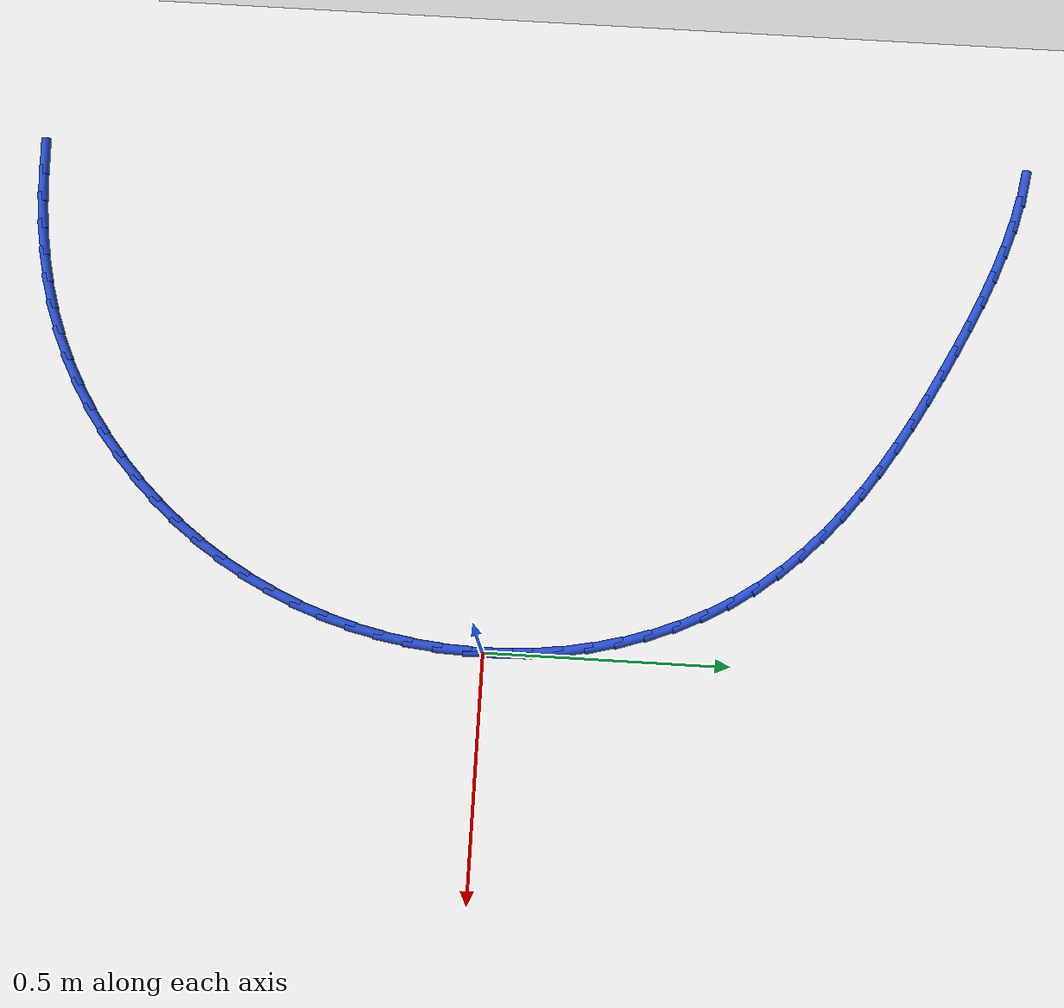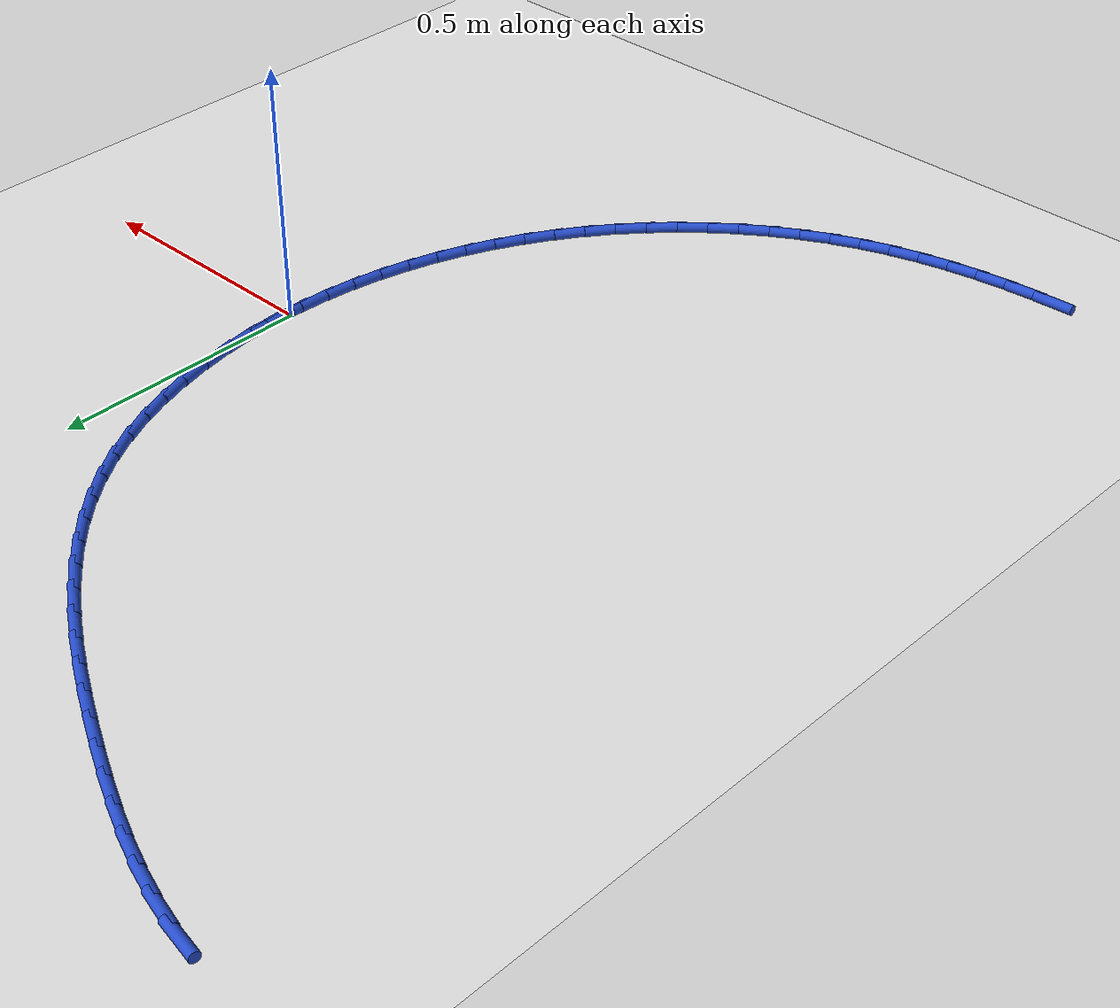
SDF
<sdf version="1.6">
 <world name="default">
  <model name="ground_plane">
   <static>1</static>
   <link name="link">
    <collision name="collision">
     <geometry><plane><normal>0 0 1</normal><size>100 100</size></plane></geometry>
     <surface><friction><ode><mu>100</mu><mu2>50</mu2></ode></friction></surface>
    </collision>
    <visual name="visual">
     <cast_shadows>0</cast_shadows>
     <geometry><plane><normal>0 0 1</normal><size>100 100</size></plane></geometry>
     <material>
      <script><uri>file://media/materials/scripts/gazebo.material</uri><name>Gazebo/WhiteGlow</name></script>
     </material>
    </visual>
   </link>
  </model>
  <model name="line">
   <link name="link_0">
    <pose>2.42861286636753e-17 1.1102230246251565e-16 0.01 0 1.57 -1.5458586868431412</pose>
    <collision name="collision">
     <geometry><cylinder><radius>0.01</radius><length>0.08</length></cylinder></geometry>
    </collision>
    <visual name="visual">
     <material>
      <script><name>Gazebo/Blue</name><uri>file://media/materials/scripts/gazebo.material</uri></script>
     </material>
     <geometry><cylinder><radius>0.01</radius><length>0.08</length></cylinder></geometry>
    </visual>
   </link>
   <link name="link_1">
    <pose>-0.0015207164406673694 0.06096812662203337 0.01 0 1.57 -1.4866603653751793</pose>
    <collision name="collision">
     <geometry><cylinder><radius>0.01</radius><length>0.08</length></cylinder></geometry>
    </collision>
    <visual name="visual">
     <material>
      <script><name>Gazebo/Blue</name><uri>file://media/materials/scripts/gazebo.material</uri></script>
     </material>
     <geometry><cylinder><radius>0.01</radius><length>0.08</length></cylinder></geometry>
    </visual>
   </link>
   <link name="link_2">
    <pose>-0.0066566192581545315 0.12186691744838041 0.01 0 1.57 -1.4271878224867465</pose>
    <collision name="collision">
     <geometry><cylinder><radius>0.01</radius><length>0.08</length></cylinder></geometry>
    </collision>
    <visual name="visual">
     <material>
      <script><name>Gazebo/Blue</name><uri>file://media/materials/scripts/gazebo.material</uri></script>
     </material>
     <geometry><cylinder><radius>0.01</radius><length>0.08</length></cylinder></geometry>
    </visual>
   </link>
   <link name="link_3">
    <pose>-0.015404263170040514 0.18236072815579585 0.01 0 1.57 -1.3668872946240866</pose>
    <collision name="collision">
     <geometry><cylinder><radius>0.01</radius><length>0.08</length></cylinder></geometry>
    </collision>
    <visual name="visual">
     <material>
      <script><name>Gazebo/Blue</name><uri>file://media/materials/scripts/gazebo.material</uri></script>
     </material>
     <geometry><cylinder><radius>0.01</radius><length>0.08</length></cylinder></geometry>
    </visual>
   </link>
   <link name="link_4">
    <pose>-0.027760202893904365 0.24211391442103428 0.01 0 1.57 -1.3052107145031218</pose>
    <collision name="collision">
     <geometry><cylinder><radius>0.01</radius><length>0.08</length></cylinder></geometry>
    </collision>
    <visual name="visual">
     <material>
      <script><name>Gazebo/Blue</name><uri>file://media/materials/scripts/gazebo.material</uri></script>
     </material>
     <geometry><cylinder><radius>0.01</radius><length>0.08</length></cylinder></geometry>
    </visual>
   </link>
   <link name="link_5">
    <pose>-0.043720993147325186 0.3007908319208505 0.01 0 1.57 -1.2416169645221773</pose>
    <collision name="collision">
     <geometry><cylinder><radius>0.01</radius><length>0.08</length></cylinder></geometry>
    </collision>
    <visual name="visual">
     <material>
      <script><name>Gazebo/Blue</name><uri>file://media/materials/scripts/gazebo.material</uri></script>
     </material>
     <geometry><cylinder><radius>0.01</radius><length>0.08</length></cylinder></geometry>
    </visual>
   </link>
   <link name="link_6">
    <pose>-0.06328318864788199 0.3580558363319988 0.01 0 1.57 -1.1755772963188136</pose>
    <collision name="collision">
     <geometry><cylinder><radius>0.01</radius><length>0.08</length></cylinder></geometry>
    </collision>
    <visual name="visual">
     <material>
      <script><name>Gazebo/Blue</name><uri>file://media/materials/scripts/gazebo.material</uri></script>
     </material>
     <geometry><cylinder><radius>0.01</radius><length>0.08</length></cylinder></geometry>
    </visual>
   </link>
   <link name="link_7">
    <pose>-0.08644334411315385 0.4135732833312339 0.01 0 1.57 -1.1065867267233076</pose>
    <collision name="collision">
     <geometry><cylinder><radius>0.01</radius><length>0.08</length></cylinder></geometry>
    </collision>
    <visual name="visual">
     <material>
      <script><name>Gazebo/Blue</name><uri>file://media/materials/scripts/gazebo.material</uri></script>
     </material>
     <geometry><cylinder><radius>0.01</radius><length>0.08</length></cylinder></geometry>
    </visual>
   </link>
   <link name="link_8">
    <pose>-0.11319801426071982 0.4670075285953104 0.01 0 1.57 -1.0341833547181802</pose>
    <collision name="collision">
     <geometry><cylinder><radius>0.01</radius><length>0.08</length></cylinder></geometry>
    </collision>
    <visual name="visual">
     <material>
      <script><name>Gazebo/Blue</name><uri>file://media/materials/scripts/gazebo.material</uri></script>
     </material>
     <geometry><cylinder><radius>0.01</radius><length>0.08</length></cylinder></geometry>
    </visual>
   </link>
   <link name="link_9">
    <pose>-0.143543753808159 0.5180229278009831 0.01 0 1.57 -0.9582198442773596</pose>
    <collision name="collision">
     <geometry><cylinder><radius>0.01</radius><length>0.08</length></cylinder></geometry>
    </collision>
    <visual name="visual">
     <material>
      <script><name>Gazebo/Blue</name><uri>file://media/materials/scripts/gazebo.material</uri></script>
     </material>
     <geometry><cylinder><radius>0.01</radius><length>0.08</length></cylinder></geometry>
    </visual>
   </link>
   <link name="link_10">
    <pose>-0.1774692086949477 0.5662974650293844 0.01 0 1.57 -0.8832938244585523</pose>
    <collision name="collision">
     <geometry><cylinder><radius>0.01</radius><length>0.08</length></cylinder></geometry>
    </collision>
    <visual name="visual">
     <material>
      <script><name>Gazebo/Blue</name><uri>file://media/materials/scripts/gazebo.material</uri></script>
     </material>
     <geometry><cylinder><radius>0.01</radius><length>0.08</length></cylinder></geometry>
    </visual>
   </link>
   <link name="link_11">
    <pose>-0.2148104602355279 0.611772023683986 0.01 0 1.57 -0.8141716887558273</pose>
    <collision name="collision">
     <geometry><cylinder><radius>0.01</radius><length>0.08</length></cylinder></geometry>
    </collision>
    <visual name="visual">
     <material>
      <script><name>Gazebo/Blue</name><uri>file://media/materials/scripts/gazebo.material</uri></script>
     </material>
     <geometry><cylinder><radius>0.01</radius><length>0.08</length></cylinder></geometry>
    </visual>
   </link>
   <link name="link_12">
    <pose>-0.2552657368704845 0.654625035204782 0.01 0 1.57 -0.7514234159928848</pose>
    <collision name="collision">
     <geometry><cylinder><radius>0.01</radius><length>0.08</length></cylinder></geometry>
    </collision>
    <visual name="visual">
     <material>
      <script><name>Gazebo/Blue</name><uri>file://media/materials/scripts/gazebo.material</uri></script>
     </material>
     <geometry><cylinder><radius>0.01</radius><length>0.08</length></cylinder></geometry>
    </visual>
   </link>
   <link name="link_13">
    <pose>-0.2985283100997654 0.6950434728305875 0.01 0 1.57 -0.6951879975769143</pose>
    <collision name="collision">
     <geometry><cylinder><radius>0.01</radius><length>0.08</length></cylinder></geometry>
    </collision>
    <visual name="visual">
     <material>
      <script><name>Gazebo/Blue</name><uri>file://media/materials/scripts/gazebo.material</uri></script>
     </material>
     <geometry><cylinder><radius>0.01</radius><length>0.08</length></cylinder></geometry>
    </visual>
   </link>
   <link name="link_14">
    <pose>-0.3442914514233186 0.7332143098002174 0.01 0 1.57 -0.6453997545807793</pose>
    <collision name="collision">
     <geometry><cylinder><radius>0.01</radius><length>0.08</length></cylinder></geometry>
    </collision>
    <visual name="visual">
     <material>
      <script><name>Gazebo/Blue</name><uri>file://media/materials/scripts/gazebo.material</uri></script>
     </material>
     <geometry><cylinder><radius>0.01</radius><length>0.08</length></cylinder></geometry>
    </visual>
   </link>
   <link name="link_15">
    <pose>-0.3922484323410923 0.7693245193524865 0.01 0 1.57 -0.6018613833616194</pose>
    <collision name="collision">
     <geometry><cylinder><radius>0.01</radius><length>0.08</length></cylinder></geometry>
    </collision>
    <visual name="visual">
     <material>
      <script><name>Gazebo/Blue</name><uri>file://media/materials/scripts/gazebo.material</uri></script>
     </material>
     <geometry><cylinder><radius>0.01</radius><length>0.08</length></cylinder></geometry>
    </visual>
   </link>
   <link name="link_16">
    <pose>-0.4420925243530342 0.80356107472621 0.01 0 1.57 -0.5643062115200767</pose>
    <collision name="collision">
     <geometry><cylinder><radius>0.01</radius><length>0.08</length></cylinder></geometry>
    </collision>
    <visual name="visual">
     <material>
      <script><name>Gazebo/Blue</name><uri>file://media/materials/scripts/gazebo.material</uri></script>
     </material>
     <geometry><cylinder><radius>0.01</radius><length>0.08</length></cylinder></geometry>
    </visual>
   </link>
   <link name="link_17">
    <pose>-0.49351699895909285 0.836110949160203 0.01 0 1.57 -0.5324465217412959</pose>
    <collision name="collision">
     <geometry><cylinder><radius>0.01</radius><length>0.08</length></cylinder></geometry>
    </collision>
    <visual name="visual">
     <material>
      <script><name>Gazebo/Blue</name><uri>file://media/materials/scripts/gazebo.material</uri></script>
     </material>
     <geometry><cylinder><radius>0.01</radius><length>0.08</length></cylinder></geometry>
    </visual>
   </link>
   <link name="link_18">
    <pose>-0.5462151276592158 0.8671611158932804 0.01 0 1.57 -0.5060087298716665</pose>
    <collision name="collision">
     <geometry><cylinder><radius>0.01</radius><length>0.08</length></cylinder></geometry>
    </collision>
    <visual name="visual">
     <material>
      <script><name>Gazebo/Blue</name><uri>file://media/materials/scripts/gazebo.material</uri></script>
     </material>
     <geometry><cylinder><radius>0.01</radius><length>0.08</length></cylinder></geometry>
    </visual>
   </link>
   <link name="link_19">
    <pose>-0.5998801819533514 0.8968985481642573 0.01 0 1.57 -0.4847580147530965</pose>
    <collision name="collision">
     <geometry><cylinder><radius>0.01</radius><length>0.08</length></cylinder></geometry>
    </collision>
    <visual name="visual">
     <material>
      <script><name>Gazebo/Blue</name><uri>file://media/materials/scripts/gazebo.material</uri></script>
     </material>
     <geometry><cylinder><radius>0.01</radius><length>0.08</length></cylinder></geometry>
    </visual>
   </link>
   <link name="link_20">
    <pose>-0.6542054333414475 0.9255102192119485 0.01 0 1.57 -0.4679844607178143</pose>
    <collision name="collision">
     <geometry><cylinder><radius>0.01</radius><length>0.08</length></cylinder></geometry>
    </collision>
    <visual name="visual">
     <material>
      <script><name>Gazebo/Blue</name><uri>file://media/materials/scripts/gazebo.material</uri></script>
     </material>
     <geometry><cylinder><radius>0.01</radius><length>0.08</length></cylinder></geometry>
    </visual>
   </link>
   <link name="link_21">
    <pose>-0.7089011558328834 0.953155235727333 0.01 0 1.57 -0.4487594342798922</pose>
    <collision name="collision">
     <geometry><cylinder><radius>0.01</radius><length>0.08</length></cylinder></geometry>
    </collision>
    <visual name="visual">
     <material>
      <script><name>Gazebo/Blue</name><uri>file://media/materials/scripts/gazebo.material</uri></script>
     </material>
     <geometry><cylinder><radius>0.01</radius><length>0.08</length></cylinder></geometry>
    </visual>
   </link>
   <link name="link_22">
    <pose>-0.7638951099996963 0.9796362511539145 0.01 0 1.57 -0.42220234217561514</pose>
    <collision name="collision">
     <geometry><cylinder><radius>0.01</radius><length>0.08</length></cylinder></geometry>
    </collision>
    <visual name="visual">
     <material>
      <script><name>Gazebo/Blue</name><uri>file://media/materials/scripts/gazebo.material</uri></script>
     </material>
     <geometry><cylinder><radius>0.01</radius><length>0.08</length></cylinder></geometry>
    </visual>
   </link>
   <link name="link_23">
    <pose>-0.8192654003337129 1.0045095102477235 0.01 0 1.57 -0.387984451018959</pose>
    <collision name="collision">
     <geometry><cylinder><radius>0.01</radius><length>0.08</length></cylinder></geometry>
    </collision>
    <visual name="visual">
     <material>
      <script><name>Gazebo/Blue</name><uri>file://media/materials/scripts/gazebo.material</uri></script>
     </material>
     <geometry><cylinder><radius>0.01</radius><length>0.08</length></cylinder></geometry>
    </visual>
   </link>
   <link name="link_24">
    <pose>-0.8750931288229395 1.0273263449681822 0.01 0 1.57 -0.3458678617990289</pose>
    <collision name="collision">
     <geometry><cylinder><radius>0.01</radius><length>0.08</length></cylinder></geometry>
    </collision>
    <visual name="visual">
     <material>
      <script><name>Gazebo/Blue</name><uri>file://media/materials/scripts/gazebo.material</uri></script>
     </material>
     <geometry><cylinder><radius>0.01</radius><length>0.08</length></cylinder></geometry>
    </visual>
   </link>
   <link name="link_25">
    <pose>-0.9314593974553833 1.0476380872747133 0.01 0 1.57 -0.2956727959915309</pose>
    <collision name="collision">
     <geometry><cylinder><radius>0.01</radius><length>0.08</length></cylinder></geometry>
    </collision>
    <visual name="visual">
     <material>
      <script><name>Gazebo/Blue</name><uri>file://media/materials/scripts/gazebo.material</uri></script>
     </material>
     <geometry><cylinder><radius>0.01</radius><length>0.08</length></cylinder></geometry>
    </visual>
   </link>
   <link name="link_26">
    <pose>-0.9884453082190502 1.0649960691267382 0.01 0 1.57 -0.23735958334587182</pose>
    <collision name="collision">
     <geometry><cylinder><radius>0.01</radius><length>0.08</length></cylinder></geometry>
    </collision>
    <visual name="visual">
     <material>
      <script><name>Gazebo/Blue</name><uri>file://media/materials/scripts/gazebo.material</uri></script>
     </material>
     <geometry><cylinder><radius>0.01</radius><length>0.08</length></cylinder></geometry>
    </visual>
   </link>
   <link name="link_27">
    <pose>-1.0461319631019468 1.0789516224836784 0.01 0 1.57 -0.17112851046442146</pose>
    <collision name="collision">
     <geometry><cylinder><radius>0.01</radius><length>0.08</length></cylinder></geometry>
    </collision>
    <visual name="visual">
     <material>
      <script><name>Gazebo/Blue</name><uri>file://media/materials/scripts/gazebo.material</uri></script>
     </material>
     <geometry><cylinder><radius>0.01</radius><length>0.08</length></cylinder></geometry>
    </visual>
   </link>
   <link name="link_84">
    <pose>-0.996510782697903 -0.9949804229358783 0.01 0 1.57 0.05329277285736077</pose>
    <collision name="collision">
     <geometry><cylinder><radius>0.01</radius><length>0.08</length></cylinder></geometry>
    </collision>
    <visual name="visual">
     <material>
      <script><name>Gazebo/Blue</name><uri>file://media/materials/scripts/gazebo.material</uri></script>
     </material>
     <geometry><cylinder><radius>0.01</radius><length>0.08</length></cylinder></geometry>
    </visual>
   </link>
   <link name="link_85">
    <pose>-0.936073155238946 -0.9917564814791384 0.01 0 1.57 0.09581133431160689</pose>
    <collision name="collision">
     <geometry><cylinder><radius>0.01</radius><length>0.08</length></cylinder></geometry>
    </collision>
    <visual name="visual">
     <material>
      <script><name>Gazebo/Blue</name><uri>file://media/materials/scripts/gazebo.material</uri></script>
     </material>
     <geometry><cylinder><radius>0.01</radius><length>0.08</length></cylinder></geometry>
    </visual>
   </link>
   <link name="link_86">
    <pose>-0.8761149428948927 -0.9859941620152685 0.01 0 1.57 0.14261319701823508</pose>
    <collision name="collision">
     <geometry><cylinder><radius>0.01</radius><length>0.08</length></cylinder></geometry>
    </collision>
    <visual name="visual">
     <material>
      <script><name>Gazebo/Blue</name><uri>file://media/materials/scripts/gazebo.material</uri></script>
     </material>
     <geometry><cylinder><radius>0.01</radius><length>0.08</length></cylinder></geometry>
    </visual>
   </link>
   <link name="link_87">
    <pose>-0.8167878520441328 -0.9774755051586166 0.01 0 1.57 0.19384710606423844</pose>
    <collision name="collision">
     <geometry><cylinder><radius>0.01</radius><length>0.08</length></cylinder></geometry>
    </collision>
    <visual name="visual">
     <material>
      <script><name>Gazebo/Blue</name><uri>file://media/materials/scripts/gazebo.material</uri></script>
     </material>
     <geometry><cylinder><radius>0.01</radius><length>0.08</length></cylinder></geometry>
    </visual>
   </link>
   <link name="link_88">
    <pose>-0.7582435890650593 -0.965982551523531 0.01 0 1.57 0.24959306997417352</pose>
    <collision name="collision">
     <geometry><cylinder><radius>0.01</radius><length>0.08</length></cylinder></geometry>
    </collision>
    <visual name="visual">
     <material>
      <script><name>Gazebo/Blue</name><uri>file://media/materials/scripts/gazebo.material</uri></script>
     </material>
     <geometry><cylinder><radius>0.01</radius><length>0.08</length></cylinder></geometry>
    </visual>
   </link>
   <link name="link_89">
    <pose>-0.7006338603360619 -0.9512973417243594 0.01 0 1.57 0.30982986872680884</pose>
    <collision name="collision">
     <geometry><cylinder><radius>0.01</radius><length>0.08</length></cylinder></geometry>
    </collision>
    <visual name="visual">
     <material>
      <script><name>Gazebo/Blue</name><uri>file://media/materials/scripts/gazebo.material</uri></script>
     </material>
     <geometry><cylinder><radius>0.01</radius><length>0.08</length></cylinder></geometry>
    </visual>
   </link>
   <link name="link_90">
    <pose>-0.6441103722355339 -0.9332019163754511 0.01 0 1.57 0.37440068873538207</pose>
    <collision name="collision">
     <geometry><cylinder><radius>0.01</radius><length>0.08</length></cylinder></geometry>
    </collision>
    <visual name="visual">
     <material>
      <script><name>Gazebo/Blue</name><uri>file://media/materials/scripts/gazebo.material</uri></script>
     </material>
     <geometry><cylinder><radius>0.01</radius><length>0.08</length></cylinder></geometry>
    </visual>
   </link>
   <link name="link_91">
    <pose>-0.5888248311418655 -0.911478316091154 0.01 0 1.57 0.44216527957162655</pose>
    <collision name="collision">
     <geometry><cylinder><radius>0.01</radius><length>0.08</length></cylinder></geometry>
    </collision>
    <visual name="visual">
     <material>
      <script><name>Gazebo/Blue</name><uri>file://media/materials/scripts/gazebo.material</uri></script>
     </material>
     <geometry><cylinder><radius>0.01</radius><length>0.08</length></cylinder></geometry>
    </visual>
   </link>
   <link name="link_92">
    <pose>-0.5349342498266737 -0.8859649838437561 0.01 0 1.57 0.5088124627913596</pose>
    <collision name="collision">
     <geometry><cylinder><radius>0.01</radius><length>0.08</length></cylinder></geometry>
    </collision>
    <visual name="visual">
     <material>
      <script><name>Gazebo/Blue</name><uri>file://media/materials/scripts/gazebo.material</uri></script>
     </material>
     <geometry><cylinder><radius>0.01</radius><length>0.08</length></cylinder></geometry>
    </visual>
   </link>
   <link name="link_93">
    <pose>-0.4826224608572772 -0.8567854337740586 0.01 0 1.57 0.5733221651321694</pose>
    <collision name="collision">
     <geometry><cylinder><radius>0.01</radius><length>0.08</length></cylinder></geometry>
    </collision>
    <visual name="visual">
     <material>
      <script><name>Gazebo/Blue</name><uri>file://media/materials/scripts/gazebo.material</uri></script>
     </material>
     <geometry><cylinder><radius>0.01</radius><length>0.08</length></cylinder></geometry>
    </visual>
   </link>
   <link name="link_94">
    <pose>-0.4320817504341722 -0.8241530348120041 0.01 0 1.57 0.6360667920060088</pose>
    <collision name="collision">
     <geometry><cylinder><radius>0.01</radius><length>0.08</length></cylinder></geometry>
    </collision>
    <visual name="visual">
     <material>
      <script><name>Gazebo/Blue</name><uri>file://media/materials/scripts/gazebo.material</uri></script>
     </material>
     <geometry><cylinder><radius>0.01</radius><length>0.08</length></cylinder></geometry>
    </visual>
   </link>
   <link name="link_95">
    <pose>-0.3835044079316216 -0.7882811896219366 0.01 0 1.57 0.6974419770351197</pose>
    <collision name="collision">
     <geometry><cylinder><radius>0.01</radius><length>0.08</length></cylinder></geometry>
    </collision>
    <visual name="visual">
     <material>
      <script><name>Gazebo/Blue</name><uri>file://media/materials/scripts/gazebo.material</uri></script>
     </material>
     <geometry><cylinder><radius>0.01</radius><length>0.08</length></cylinder></geometry>
    </visual>
   </link>
   <link name="link_96">
    <pose>-0.3370827227238902 -0.7493833008682019 0.01 0 1.57 0.7578568508890586</pose>
    <collision name="collision">
     <geometry><cylinder><radius>0.01</radius><length>0.08</length></cylinder></geometry>
    </collision>
    <visual name="visual">
     <material>
      <script><name>Gazebo/Blue</name><uri>file://media/materials/scripts/gazebo.material</uri></script>
     </material>
     <geometry><cylinder><radius>0.01</radius><length>0.08</length></cylinder></geometry>
    </visual>
   </link>
   <link name="link_97">
    <pose>-0.2930089841852411 -0.7076727712151443 0.01 0 1.57 0.8177279901350911</pose>
    <collision name="collision">
     <geometry><cylinder><radius>0.01</radius><length>0.08</length></cylinder></geometry>
    </collision>
    <visual name="visual">
     <material>
      <script><name>Gazebo/Blue</name><uri>file://media/materials/scripts/gazebo.material</uri></script>
     </material>
     <geometry><cylinder><radius>0.01</radius><length>0.08</length></cylinder></geometry>
    </visual>
   </link>
   <link name="link_98">
    <pose>-0.2514754816899374 -0.6633630033271076 0.01 0 1.57 0.8774755639782506</pose>
    <collision name="collision">
     <geometry><cylinder><radius>0.01</radius><length>0.08</length></cylinder></geometry>
    </collision>
    <visual name="visual">
     <material>
      <script><name>Gazebo/Blue</name><uri>file://media/materials/scripts/gazebo.material</uri></script>
     </material>
     <geometry><cylinder><radius>0.01</radius><length>0.08</length></cylinder></geometry>
    </visual>
   </link>
   <link name="link_99">
    <pose>-0.21267450461224405 -0.6166673998684383 0.01 0 1.57 0.9375207061505717</pose>
    <collision name="collision">
     <geometry><cylinder><radius>0.01</radius><length>0.08</length></cylinder></geometry>
    </collision>
    <visual name="visual">
     <material>
      <script><name>Gazebo/Blue</name><uri>file://media/materials/scripts/gazebo.material</uri></script>
     </material>
     <geometry><cylinder><radius>0.01</radius><length>0.08</length></cylinder></geometry>
    </visual>
   </link>
   <link name="link_100">
    <pose>-0.17679834232642355 -0.5677993635034795 0.01 0 1.57 0.9982558696113486</pose>
    <collision name="collision">
     <geometry><cylinder><radius>0.01</radius><length>0.08</length></cylinder></geometry>
    </collision>
    <visual name="visual">
     <material>
      <script><name>Gazebo/Blue</name><uri>file://media/materials/scripts/gazebo.material</uri></script>
     </material>
     <geometry><cylinder><radius>0.01</radius><length>0.08</length></cylinder></geometry>
    </visual>
   </link>
   <link name="link_101">
    <pose>-0.14403682877665364 -0.5169715345361363 0.01 0 1.57 1.0592743881756994</pose>
    <collision name="collision">
     <geometry><cylinder><radius>0.01</radius><length>0.08</length></cylinder></geometry>
    </collision>
    <visual name="visual">
     <material>
      <script><name>Gazebo/Blue</name><uri>file://media/materials/scripts/gazebo.material</uri></script>
     </material>
     <geometry><cylinder><radius>0.01</radius><length>0.08</length></cylinder></geometry>
    </visual>
   </link>
   <link name="link_102">
    <pose>-0.1145115122206626 -0.4643753519718967 0.01 0 1.57 1.1198509425375893</pose>
    <collision name="collision">
     <geometry><cylinder><radius>0.01</radius><length>0.08</length></cylinder></geometry>
    </collision>
    <visual name="visual">
     <material>
      <script><name>Gazebo/Blue</name><uri>file://media/materials/scripts/gazebo.material</uri></script>
     </material>
     <geometry><cylinder><radius>0.01</radius><length>0.08</length></cylinder></geometry>
    </visual>
   </link>
   <link name="link_103">
    <pose>-0.08826836773546548 -0.41017879090104575 0.01 0 1.57 1.1799991737396973</pose>
    <collision name="collision">
     <geometry><cylinder><radius>0.01</radius><length>0.08</length></cylinder></geometry>
    </collision>
    <visual name="visual">
     <material>
      <script><name>Gazebo/Blue</name><uri>file://media/materials/scripts/gazebo.material</uri></script>
     </material>
     <geometry><cylinder><radius>0.01</radius><length>0.08</length></cylinder></geometry>
    </visual>
   </link>
   <link name="link_104">
    <pose>-0.06534945276961757 -0.3545486100709633 0.01 0 1.57 1.2397903206996053</pose>
    <collision name="collision">
     <geometry><cylinder><radius>0.01</radius><length>0.08</length></cylinder></geometry>
    </collision>
    <visual name="visual">
     <material>
      <script><name>Gazebo/Blue</name><uri>file://media/materials/scripts/gazebo.material</uri></script>
     </material>
     <geometry><cylinder><radius>0.01</radius><length>0.08</length></cylinder></geometry>
    </visual>
   </link>
   <link name="link_105">
    <pose>-0.04579682477167528 -0.2976515682290326 0.01 0 1.57 1.2993058646698918</pose>
    <collision name="collision">
     <geometry><cylinder><radius>0.01</radius><length>0.08</length></cylinder></geometry>
    </collision>
    <visual name="visual">
     <material>
      <script><name>Gazebo/Blue</name><uri>file://media/materials/scripts/gazebo.material</uri></script>
     </material>
     <geometry><cylinder><radius>0.01</radius><length>0.08</length></cylinder></geometry>
    </visual>
   </link>
   <link name="link_106">
    <pose>-0.029652541190194056 -0.23965442412263394 0.01 0 1.57 1.3586337411683063</pose>
    <collision name="collision">
     <geometry><cylinder><radius>0.01</radius><length>0.08</length></cylinder></geometry>
    </collision>
    <visual name="visual">
     <material>
      <script><name>Gazebo/Blue</name><uri>file://media/materials/scripts/gazebo.material</uri></script>
     </material>
     <geometry><cylinder><radius>0.01</radius><length>0.08</length></cylinder></geometry>
    </visual>
   </link>
   <link name="link_107">
    <pose>-0.01695865947373016 -0.1807239364991504 0.01 0 1.57 1.4178646115031706</pose>
    <collision name="collision">
     <geometry><cylinder><radius>0.01</radius><length>0.08</length></cylinder></geometry>
    </collision>
    <visual name="visual">
     <material>
      <script><name>Gazebo/Blue</name><uri>file://media/materials/scripts/gazebo.material</uri></script>
     </material>
     <geometry><cylinder><radius>0.01</radius><length>0.08</length></cylinder></geometry>
    </visual>
   </link>
   <link name="link_108">
    <pose>-0.00775723707083917 -0.12102686410596192 0.01 0 1.57 1.4770882150888427</pose>
    <collision name="collision">
     <geometry><cylinder><radius>0.01</radius><length>0.08</length></cylinder></geometry>
    </collision>
    <visual name="visual">
     <material>
      <script><name>Gazebo/Blue</name><uri>file://media/materials/scripts/gazebo.material</uri></script>
     </material>
     <geometry><cylinder><radius>0.01</radius><length>0.08</length></cylinder></geometry>
    </visual>
   </link>
   <link name="link_109">
    <pose>-0.002090331430077195 -0.060729965690451804 0.01 0 1.57 1.5363898111540977</pose>
    <collision name="collision">
     <geometry><cylinder><radius>0.01</radius><length>0.08</length></cylinder></geometry>
    </collision>
    <visual name="visual">
     <material>
      <script><name>Gazebo/Blue</name><uri>file://media/materials/scripts/gazebo.material</uri></script>
     </material>
     <geometry><cylinder><radius>0.01</radius><length>0.08</length></cylinder></geometry>
    </visual>
   </link>
   <link name="link_110">
    <pose>-3.469446951953614e-18 -5.551115123125783e-17 0.01 0 1.57 -1.5457459355266818</pose>
    <collision name="collision">
     <geometry><cylinder><radius>0.01</radius><length>0.08</length></cylinder></geometry>
    </collision>
    <visual name="visual">
     <material>
      <script><name>Gazebo/Blue</name><uri>file://media/materials/scripts/gazebo.material</uri></script>
     </material>
     <geometry><cylinder><radius>0.01</radius><length>0.08</length></cylinder></geometry>
    </visual>
   </link>
   <link name="link_111">
    <pose>-0.0015283002291635074 0.06099627421801007 0.01 0 1.57 -1.5457459355266814</pose>
    <collision name="collision">
     <geometry><cylinder><radius>0.01</radius><length>0.08</length></cylinder></geometry>
    </collision>
    <visual name="visual">
     <material>
      <script><name>Gazebo/Blue</name><uri>file://media/materials/scripts/gazebo.material</uri></script>
     </material>
     <geometry><cylinder><radius>0.01</radius><length>0.08</length></cylinder></geometry>
    </visual>
   </link>
  </model>
 </world>
</sdf>
